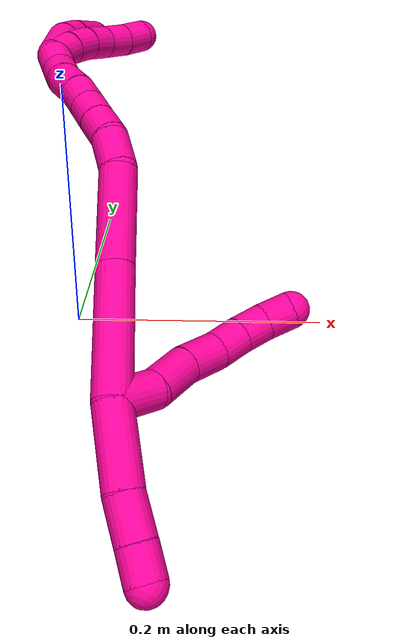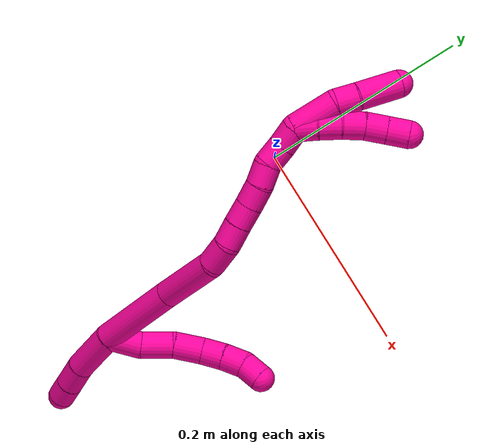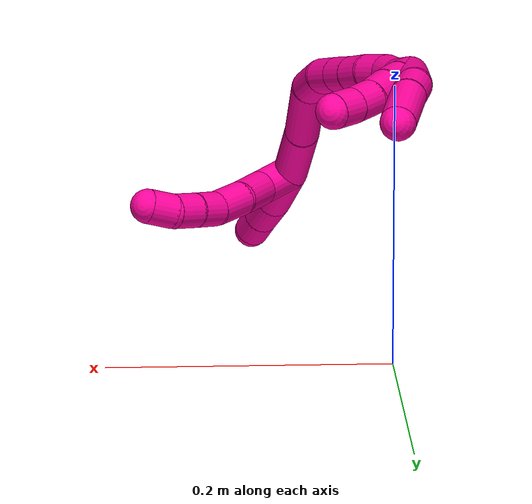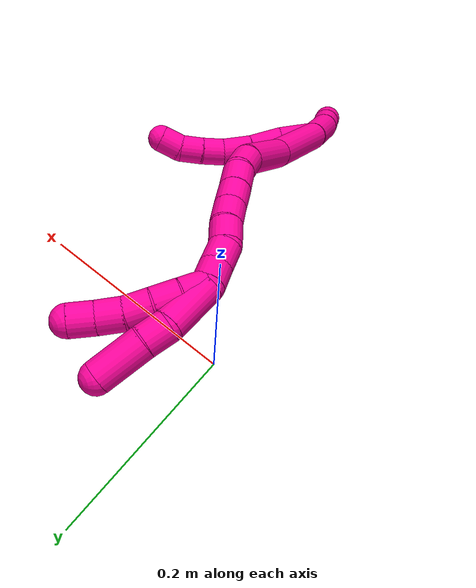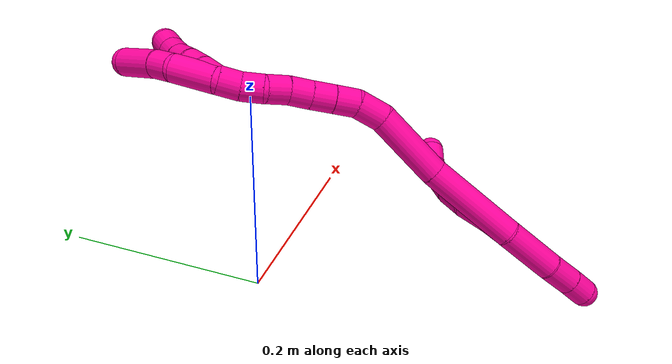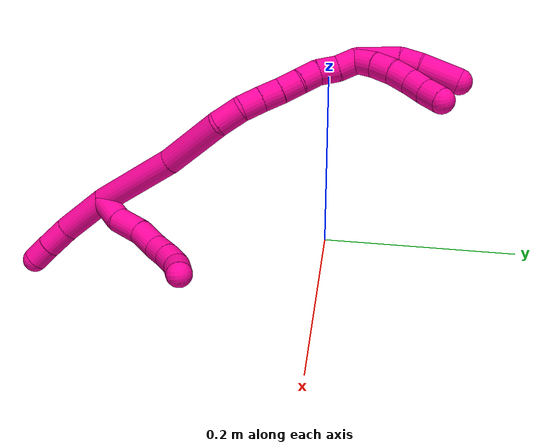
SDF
<sdf version="1.7">
 <world name="default">
  <model name="18">
   <static>0</static>
   <link name="18">
    <collision name="collision-cylinder-e_1_2_8">
     <pose>0.007819 -0.006028 0.01164 0.477806 0.53783 0.134041</pose>
     <geometry><cylinder><radius>0.0125</radius><length>0.030527</length></cylinder></geometry>
     <surface>
      <friction><ode><mu>1.16</mu><mu2>1.16</mu2><slip1>0</slip1><slip2>0</slip2></ode></friction>
      <contact><ode><kp>1e+06</kp><kd>1</kd><max_vel>0</max_vel><min_depth>0.001</min_depth></ode></contact>
     </surface>
    </collision>
    <visual name="visual-cylinder-e_1_2_8">
     <pose>0.007819 -0.006028 0.01164 0.477806 0.53783 0.134041</pose>
     <geometry><cylinder><radius>0.0125</radius><length>0.030527</length></cylinder></geometry>
     <material><ambient>1 0.007843 0.615686 1</ambient></material>
    </visual>
    <collision name="collision-cylinder-e_2_8_9">
     <pose>0.020847 -0.014645 0.037347 0.182055 0.349267 0.032206</pose>
     <geometry><cylinder><radius>0.0125</radius><length>0.030442</length></cylinder></geometry>
     <surface>
      <friction><ode><mu>1.16</mu><mu2>1.16</mu2><slip1>0</slip1><slip2>0</slip2></ode></friction>
      <contact><ode><kp>1e+06</kp><kd>1</kd><max_vel>0</max_vel><min_depth>0.001</min_depth></ode></contact>
     </surface>
    </collision>
    <visual name="visual-cylinder-e_2_8_9">
     <pose>0.020847 -0.014645 0.037347 0.182055 0.349267 0.032206</pose>
     <geometry><cylinder><radius>0.0125</radius><length>0.030442</length></cylinder></geometry>
     <material><ambient>1 0.007843 0.615686 1</ambient></material>
    </visual>
    <collision name="collision-cylinder-e_3_9_10">
     <pose>0.031687 -0.022147 0.062798 0.407317 0.426265 0.089331</pose>
     <geometry><cylinder><radius>0.0125</radius><length>0.027238</length></cylinder></geometry>
     <surface>
      <friction><ode><mu>1.16</mu><mu2>1.16</mu2><slip1>0</slip1><slip2>0</slip2></ode></friction>
      <contact><ode><kp>1e+06</kp><kd>1</kd><max_vel>0</max_vel><min_depth>0.001</min_depth></ode></contact>
     </surface>
    </collision>
    <visual name="visual-cylinder-e_3_9_10">
     <pose>0.031687 -0.022147 0.062798 0.407317 0.426265 0.089331</pose>
     <geometry><cylinder><radius>0.0125</radius><length>0.027238</length></cylinder></geometry>
     <material><ambient>1 0.007843 0.615686 1</ambient></material>
    </visual>
    <collision name="collision-cylinder-e_4_10_11">
     <pose>0.039419 -0.031657 0.083236 0.469979 0.204073 0.049018</pose>
     <geometry><cylinder><radius>0.0125</radius><length>0.020734</length></cylinder></geometry>
     <surface>
      <friction><ode><mu>1.16</mu><mu2>1.16</mu2><slip1>0</slip1><slip2>0</slip2></ode></friction>
      <contact><ode><kp>1e+06</kp><kd>1</kd><max_vel>0</max_vel><min_depth>0.001</min_depth></ode></contact>
     </surface>
    </collision>
    <visual name="visual-cylinder-e_4_10_11">
     <pose>0.039419 -0.031657 0.083236 0.469979 0.204073 0.049018</pose>
     <geometry><cylinder><radius>0.0125</radius><length>0.020734</length></cylinder></geometry>
     <material><ambient>1 0.007843 0.615686 1</ambient></material>
    </visual>
    <collision name="collision-cylinder-e_5_11_12">
     <pose>0.04372 -0.041716 0.100868 0.566829 0.213012 0.062256</pose>
     <geometry><cylinder><radius>0.0125</radius><length>0.020813</length></cylinder></geometry>
     <surface>
      <friction><ode><mu>1.16</mu><mu2>1.16</mu2><slip1>0</slip1><slip2>0</slip2></ode></friction>
      <contact><ode><kp>1e+06</kp><kd>1</kd><max_vel>0</max_vel><min_depth>0.001</min_depth></ode></contact>
     </surface>
    </collision>
    <visual name="visual-cylinder-e_5_11_12">
     <pose>0.04372 -0.041716 0.100868 0.566829 0.213012 0.062256</pose>
     <geometry><cylinder><radius>0.0125</radius><length>0.020813</length></cylinder></geometry>
     <material><ambient>1 0.007843 0.615686 1</ambient></material>
    </visual>
    <collision name="collision-cylinder-e_6_12_6">
     <pose>0.046276 -0.054883 0.116003 0.865898 0.035201 0.016271</pose>
     <geometry><cylinder><radius>0.0125</radius><length>0.020245</length></cylinder></geometry>
     <surface>
      <friction><ode><mu>1.16</mu><mu2>1.16</mu2><slip1>0</slip1><slip2>0</slip2></ode></friction>
      <contact><ode><kp>1e+06</kp><kd>1</kd><max_vel>0</max_vel><min_depth>0.001</min_depth></ode></contact>
     </surface>
    </collision>
    <visual name="visual-cylinder-e_6_12_6">
     <pose>0.046276 -0.054883 0.116003 0.865898 0.035201 0.016271</pose>
     <geometry><cylinder><radius>0.0125</radius><length>0.020245</length></cylinder></geometry>
     <material><ambient>1 0.007843 0.615686 1</ambient></material>
    </visual>
    <collision name="collision-cylinder-e_1_2_13">
     <pose>0.012063 -0.008764 -0.021028 2.74669 0.486966 1.7856</pose>
     <geometry><cylinder><radius>0.0125</radius><length>0.051555</length></cylinder></geometry>
     <surface>
      <friction><ode><mu>1.16</mu><mu2>1.16</mu2><slip1>0</slip1><slip2>0</slip2></ode></friction>
      <contact><ode><kp>1e+06</kp><kd>1</kd><max_vel>0</max_vel><min_depth>0.001</min_depth></ode></contact>
     </surface>
    </collision>
    <visual name="visual-cylinder-e_1_2_13">
     <pose>0.012063 -0.008764 -0.021028 2.74669 0.486966 1.7856</pose>
     <geometry><cylinder><radius>0.0125</radius><length>0.051555</length></cylinder></geometry>
     <material><ambient>1 0.007843 0.615686 1</ambient></material>
    </visual>
    <collision name="collision-cylinder-e_2_13_14">
     <pose>0.031262 -0.023307 -0.052096 2.61937 0.552142 1.62924</pose>
     <geometry><cylinder><radius>0.0125</radius><length>0.027213</length></cylinder></geometry>
     <surface>
      <friction><ode><mu>1.16</mu><mu2>1.16</mu2><slip1>0</slip1><slip2>0</slip2></ode></friction>
      <contact><ode><kp>1e+06</kp><kd>1</kd><max_vel>0</max_vel><min_depth>0.001</min_depth></ode></contact>
     </surface>
    </collision>
    <visual name="visual-cylinder-e_2_13_14">
     <pose>0.031262 -0.023307 -0.052096 2.61937 0.552142 1.62924</pose>
     <geometry><cylinder><radius>0.0125</radius><length>0.027213</length></cylinder></geometry>
     <material><ambient>1 0.007843 0.615686 1</ambient></material>
    </visual>
    <collision name="collision-cylinder-e_3_14_5">
     <pose>0.044208 -0.033373 -0.069919 2.63812 0.579092 1.71726</pose>
     <geometry><cylinder><radius>0.0125</radius><length>0.021232</length></cylinder></geometry>
     <surface>
      <friction><ode><mu>1.16</mu><mu2>1.16</mu2><slip1>0</slip1><slip2>0</slip2></ode></friction>
      <contact><ode><kp>1e+06</kp><kd>1</kd><max_vel>0</max_vel><min_depth>0.001</min_depth></ode></contact>
     </surface>
    </collision>
    <visual name="visual-cylinder-e_3_14_5">
     <pose>0.044208 -0.033373 -0.069919 2.63812 0.579092 1.71726</pose>
     <geometry><cylinder><radius>0.0125</radius><length>0.021232</length></cylinder></geometry>
     <material><ambient>1 0.007843 0.615686 1</ambient></material>
    </visual>
    <collision name="collision-cylinder-e_1_2_15">
     <pose>-0.016124 0.010579 0.038519 -0.268039 -0.383648 0.052358</pose>
     <geometry><cylinder><radius>0.0125</radius><length>0.086154</length></cylinder></geometry>
     <surface>
      <friction><ode><mu>1.16</mu><mu2>1.16</mu2><slip1>0</slip1><slip2>0</slip2></ode></friction>
      <contact><ode><kp>1e+06</kp><kd>1</kd><max_vel>0</max_vel><min_depth>0.001</min_depth></ode></contact>
     </surface>
    </collision>
    <visual name="visual-cylinder-e_1_2_15">
     <pose>-0.016124 0.010579 0.038519 -0.268039 -0.383648 0.052358</pose>
     <geometry><cylinder><radius>0.0125</radius><length>0.086154</length></cylinder></geometry>
     <material><ambient>1 0.007843 0.615686 1</ambient></material>
    </visual>
    <collision name="collision-cylinder-e_2_15_16">
     <pose>-0.048125 0.027078 0.105533 -0.204835 -0.499424 0.052412</pose>
     <geometry><cylinder><radius>0.0125</radius><length>0.066304</length></cylinder></geometry>
     <surface>
      <friction><ode><mu>1.16</mu><mu2>1.16</mu2><slip1>0</slip1><slip2>0</slip2></ode></friction>
      <contact><ode><kp>1e+06</kp><kd>1</kd><max_vel>0</max_vel><min_depth>0.001</min_depth></ode></contact>
     </surface>
    </collision>
    <visual name="visual-cylinder-e_2_15_16">
     <pose>-0.048125 0.027078 0.105533 -0.204835 -0.499424 0.052412</pose>
     <geometry><cylinder><radius>0.0125</radius><length>0.066304</length></cylinder></geometry>
     <material><ambient>1 0.007843 0.615686 1</ambient></material>
    </visual>
    <collision name="collision-cylinder-e_3_16_17">
     <pose>-0.068977 0.039198 0.144506 -0.534254 -0.387839 0.107387</pose>
     <geometry><cylinder><radius>0.0125</radius><length>0.026304</length></cylinder></geometry>
     <surface>
      <friction><ode><mu>1.16</mu><mu2>1.16</mu2><slip1>0</slip1><slip2>0</slip2></ode></friction>
      <contact><ode><kp>1e+06</kp><kd>1</kd><max_vel>0</max_vel><min_depth>0.001</min_depth></ode></contact>
     </surface>
    </collision>
    <visual name="visual-cylinder-e_3_16_17">
     <pose>-0.068977 0.039198 0.144506 -0.534254 -0.387839 0.107387</pose>
     <geometry><cylinder><radius>0.0125</radius><length>0.026304</length></cylinder></geometry>
     <material><ambient>1 0.007843 0.615686 1</ambient></material>
    </visual>
    <collision name="collision-cylinder-e_4_17_18">
     <pose>-0.075887 0.052722 0.162313 -0.785155 -0.184801 0.076702</pose>
     <geometry><cylinder><radius>0.0125</radius><length>0.02108</length></cylinder></geometry>
     <surface>
      <friction><ode><mu>1.16</mu><mu2>1.16</mu2><slip1>0</slip1><slip2>0</slip2></ode></friction>
      <contact><ode><kp>1e+06</kp><kd>1</kd><max_vel>0</max_vel><min_depth>0.001</min_depth></ode></contact>
     </surface>
    </collision>
    <visual name="visual-cylinder-e_4_17_18">
     <pose>-0.075887 0.052722 0.162313 -0.785155 -0.184801 0.076702</pose>
     <geometry><cylinder><radius>0.0125</radius><length>0.02108</length></cylinder></geometry>
     <material><ambient>1 0.007843 0.615686 1</ambient></material>
    </visual>
    <collision name="collision-cylinder-e_5_18_19">
     <pose>-0.079378 0.066867 0.176802 -0.761041 -0.155873 0.062458</pose>
     <geometry><cylinder><radius>0.0125</radius><length>0.020022</length></cylinder></geometry>
     <surface>
      <friction><ode><mu>1.16</mu><mu2>1.16</mu2><slip1>0</slip1><slip2>0</slip2></ode></friction>
      <contact><ode><kp>1e+06</kp><kd>1</kd><max_vel>0</max_vel><min_depth>0.001</min_depth></ode></contact>
     </surface>
    </collision>
    <visual name="visual-cylinder-e_5_18_19">
     <pose>-0.079378 0.066867 0.176802 -0.761041 -0.155873 0.062458</pose>
     <geometry><cylinder><radius>0.0125</radius><length>0.020022</length></cylinder></geometry>
     <material><ambient>1 0.007843 0.615686 1</ambient></material>
    </visual>
    <collision name="collision-cylinder-e_6_19_20">
     <pose>-0.082998 0.080597 0.190946 -0.780155 -0.207216 0.08545</pose>
     <geometry><cylinder><radius>0.0125</radius><length>0.020077</length></cylinder></geometry>
     <surface>
      <friction><ode><mu>1.16</mu><mu2>1.16</mu2><slip1>0</slip1><slip2>0</slip2></ode></friction>
      <contact><ode><kp>1e+06</kp><kd>1</kd><max_vel>0</max_vel><min_depth>0.001</min_depth></ode></contact>
     </surface>
    </collision>
    <visual name="visual-cylinder-e_6_19_20">
     <pose>-0.082998 0.080597 0.190946 -0.780155 -0.207216 0.08545</pose>
     <geometry><cylinder><radius>0.0125</radius><length>0.020077</length></cylinder></geometry>
     <material><ambient>1 0.007843 0.615686 1</ambient></material>
    </visual>
    <collision name="collision-cylinder-e_7_20_21">
     <pose>-0.086663 0.095511 0.20375 -0.941966 -0.160234 0.081721</pose>
     <geometry><cylinder><radius>0.0125</radius><length>0.02005</length></cylinder></geometry>
     <surface>
      <friction><ode><mu>1.16</mu><mu2>1.16</mu2><slip1>0</slip1><slip2>0</slip2></ode></friction>
      <contact><ode><kp>1e+06</kp><kd>1</kd><max_vel>0</max_vel><min_depth>0.001</min_depth></ode></contact>
     </surface>
    </collision>
    <visual name="visual-cylinder-e_7_20_21">
     <pose>-0.086663 0.095511 0.20375 -0.941966 -0.160234 0.081721</pose>
     <geometry><cylinder><radius>0.0125</radius><length>0.02005</length></cylinder></geometry>
     <material><ambient>1 0.007843 0.615686 1</ambient></material>
    </visual>
    <collision name="collision-cylinder-e_8_21_22">
     <pose>-0.087778 0.109707 0.21741 -0.668669 0.048385 -0.016811</pose>
     <geometry><cylinder><radius>0.0125</radius><length>0.020003</length></cylinder></geometry>
     <surface>
      <friction><ode><mu>1.16</mu><mu2>1.16</mu2><slip1>0</slip1><slip2>0</slip2></ode></friction>
      <contact><ode><kp>1e+06</kp><kd>1</kd><max_vel>0</max_vel><min_depth>0.001</min_depth></ode></contact>
     </surface>
    </collision>
    <visual name="visual-cylinder-e_8_21_22">
     <pose>-0.087778 0.109707 0.21741 -0.668669 0.048385 -0.016811</pose>
     <geometry><cylinder><radius>0.0125</radius><length>0.020003</length></cylinder></geometry>
     <material><ambient>1 0.007843 0.615686 1</ambient></material>
    </visual>
    <collision name="collision-cylinder-e_9_22_1">
     <pose>-0.089084 0.121876 0.233067 -0.652529 -0.179901 0.061016</pose>
     <geometry><cylinder><radius>0.0125</radius><length>0.020004</length></cylinder></geometry>
     <surface>
      <friction><ode><mu>1.16</mu><mu2>1.16</mu2><slip1>0</slip1><slip2>0</slip2></ode></friction>
      <contact><ode><kp>1e+06</kp><kd>1</kd><max_vel>0</max_vel><min_depth>0.001</min_depth></ode></contact>
     </surface>
    </collision>
    <visual name="visual-cylinder-e_9_22_1">
     <pose>-0.089084 0.121876 0.233067 -0.652529 -0.179901 0.061016</pose>
     <geometry><cylinder><radius>0.0125</radius><length>0.020004</length></cylinder></geometry>
     <material><ambient>1 0.007843 0.615686 1</ambient></material>
    </visual>
    <collision name="collision-cylinder-e_1_1_23">
     <pose>-0.088395 0.126729 0.250509 0.1161 0.250547 0.014637</pose>
     <geometry><cylinder><radius>0.0125</radius><length>0.02</length></cylinder></geometry>
     <surface>
      <friction><ode><mu>1.16</mu><mu2>1.16</mu2><slip1>0</slip1><slip2>0</slip2></ode></friction>
      <contact><ode><kp>1e+06</kp><kd>1</kd><max_vel>0</max_vel><min_depth>0.001</min_depth></ode></contact>
     </surface>
    </collision>
    <visual name="visual-cylinder-e_1_1_23">
     <pose>-0.088395 0.126729 0.250509 0.1161 0.250547 0.014637</pose>
     <geometry><cylinder><radius>0.0125</radius><length>0.02</length></cylinder></geometry>
     <material><ambient>1 0.007843 0.615686 1</ambient></material>
    </visual>
    <collision name="collision-cylinder-e_2_23_24">
     <pose>-0.082363 0.124238 0.269378 0.146907 0.363192 0.027022</pose>
     <geometry><cylinder><radius>0.0125</radius><length>0.02</length></cylinder></geometry>
     <surface>
      <friction><ode><mu>1.16</mu><mu2>1.16</mu2><slip1>0</slip1><slip2>0</slip2></ode></friction>
      <contact><ode><kp>1e+06</kp><kd>1</kd><max_vel>0</max_vel><min_depth>0.001</min_depth></ode></contact>
     </surface>
    </collision>
    <visual name="visual-cylinder-e_2_23_24">
     <pose>-0.082363 0.124238 0.269378 0.146907 0.363192 0.027022</pose>
     <geometry><cylinder><radius>0.0125</radius><length>0.02</length></cylinder></geometry>
     <material><ambient>1 0.007843 0.615686 1</ambient></material>
    </visual>
    <collision name="collision-cylinder-e_3_24_25">
     <pose>-0.07412 0.12111 0.28728 0.200652 0.488201 0.050134</pose>
     <geometry><cylinder><radius>0.0125</radius><length>0.02</length></cylinder></geometry>
     <surface>
      <friction><ode><mu>1.16</mu><mu2>1.16</mu2><slip1>0</slip1><slip2>0</slip2></ode></friction>
      <contact><ode><kp>1e+06</kp><kd>1</kd><max_vel>0</max_vel><min_depth>0.001</min_depth></ode></contact>
     </surface>
    </collision>
    <visual name="visual-cylinder-e_3_24_25">
     <pose>-0.07412 0.12111 0.28728 0.200652 0.488201 0.050134</pose>
     <geometry><cylinder><radius>0.0125</radius><length>0.02</length></cylinder></geometry>
     <material><ambient>1 0.007843 0.615686 1</ambient></material>
    </visual>
    <collision name="collision-cylinder-e_4_25_26">
     <pose>-0.065225 0.115956 0.304349 0.383376 0.433952 0.085512</pose>
     <geometry><cylinder><radius>0.0125</radius><length>0.02</length></cylinder></geometry>
     <surface>
      <friction><ode><mu>1.16</mu><mu2>1.16</mu2><slip1>0</slip1><slip2>0</slip2></ode></friction>
      <contact><ode><kp>1e+06</kp><kd>1</kd><max_vel>0</max_vel><min_depth>0.001</min_depth></ode></contact>
     </surface>
    </collision>
    <visual name="visual-cylinder-e_4_25_26">
     <pose>-0.065225 0.115956 0.304349 0.383376 0.433952 0.085512</pose>
     <geometry><cylinder><radius>0.0125</radius><length>0.02</length></cylinder></geometry>
     <material><ambient>1 0.007843 0.615686 1</ambient></material>
    </visual>
    <collision name="collision-cylinder-e_5_26_4">
     <pose>-0.05761 0.10893 0.321434 0.396686 0.347986 0.070625</pose>
     <geometry><cylinder><radius>0.0125</radius><length>0.02</length></cylinder></geometry>
     <surface>
      <friction><ode><mu>1.16</mu><mu2>1.16</mu2><slip1>0</slip1><slip2>0</slip2></ode></friction>
      <contact><ode><kp>1e+06</kp><kd>1</kd><max_vel>0</max_vel><min_depth>0.001</min_depth></ode></contact>
     </surface>
    </collision>
    <visual name="visual-cylinder-e_5_26_4">
     <pose>-0.05761 0.10893 0.321434 0.396686 0.347986 0.070625</pose>
     <geometry><cylinder><radius>0.0125</radius><length>0.02</length></cylinder></geometry>
     <material><ambient>1 0.007843 0.615686 1</ambient></material>
    </visual>
    <collision name="collision-cylinder-e_1_1_27">
     <pose>-0.087767 0.134833 0.259881 -0.35226 0.152354 -0.027166</pose>
     <geometry><cylinder><radius>0.0125</radius><length>0.04095</length></cylinder></geometry>
     <surface>
      <friction><ode><mu>1.16</mu><mu2>1.16</mu2><slip1>0</slip1><slip2>0</slip2></ode></friction>
      <contact><ode><kp>1e+06</kp><kd>1</kd><max_vel>0</max_vel><min_depth>0.001</min_depth></ode></contact>
     </surface>
    </collision>
    <visual name="visual-cylinder-e_1_1_27">
     <pose>-0.087767 0.134833 0.259881 -0.35226 0.152354 -0.027166</pose>
     <geometry><cylinder><radius>0.0125</radius><length>0.04095</length></cylinder></geometry>
     <material><ambient>1 0.007843 0.615686 1</ambient></material>
    </visual>
    <collision name="collision-cylinder-e_2_27_28">
     <pose>-0.080751 0.143014 0.288017 -0.130284 0.401003 -0.026514</pose>
     <geometry><cylinder><radius>0.0125</radius><length>0.020026</length></cylinder></geometry>
     <surface>
      <friction><ode><mu>1.16</mu><mu2>1.16</mu2><slip1>0</slip1><slip2>0</slip2></ode></friction>
      <contact><ode><kp>1e+06</kp><kd>1</kd><max_vel>0</max_vel><min_depth>0.001</min_depth></ode></contact>
     </surface>
    </collision>
    <visual name="visual-cylinder-e_2_27_28">
     <pose>-0.080751 0.143014 0.288017 -0.130284 0.401003 -0.026514</pose>
     <geometry><cylinder><radius>0.0125</radius><length>0.020026</length></cylinder></geometry>
     <material><ambient>1 0.007843 0.615686 1</ambient></material>
    </visual>
    <collision name="collision-cylinder-e_3_28_3">
     <pose>-0.067294 0.147323 0.313887 -0.183919 0.511328 -0.0482</pose>
     <geometry><cylinder><radius>0.0125</radius><length>0.039024</length></cylinder></geometry>
     <surface>
      <friction><ode><mu>1.16</mu><mu2>1.16</mu2><slip1>0</slip1><slip2>0</slip2></ode></friction>
      <contact><ode><kp>1e+06</kp><kd>1</kd><max_vel>0</max_vel><min_depth>0.001</min_depth></ode></contact>
     </surface>
    </collision>
    <visual name="visual-cylinder-e_3_28_3">
     <pose>-0.067294 0.147323 0.313887 -0.183919 0.511328 -0.0482</pose>
     <geometry><cylinder><radius>0.0125</radius><length>0.039024</length></cylinder></geometry>
     <material><ambient>1 0.007843 0.615686 1</ambient></material>
    </visual>
    <collision name="collision-sphere-3">
     <pose>-0.057746 0.150435 0.330616 0 -0 0</pose>
     <geometry><sphere><radius>0.0125</radius></sphere></geometry>
     <surface>
      <friction><ode><mu>1.16</mu><mu2>1.16</mu2><slip1>0</slip1><slip2>0</slip2></ode></friction>
      <contact><ode><kp>1e+06</kp><kd>1</kd><max_vel>0</max_vel><min_depth>0.001</min_depth></ode></contact>
     </surface>
    </collision>
    <visual name="visual-sphere-3">
     <pose>-0.057746 0.150435 0.330616 0 -0 0</pose>
     <geometry><sphere><radius>0.0125</radius></sphere></geometry>
     <material><ambient>1 0.007843 0.615686 1</ambient></material>
    </visual>
    <collision name="collision-sphere-28">
     <pose>-0.076842 0.144211 0.297158 0 -0 0</pose>
     <geometry><sphere><radius>0.0125</radius></sphere></geometry>
     <surface>
      <friction><ode><mu>1.16</mu><mu2>1.16</mu2><slip1>0</slip1><slip2>0</slip2></ode></friction>
      <contact><ode><kp>1e+06</kp><kd>1</kd><max_vel>0</max_vel><min_depth>0.001</min_depth></ode></contact>
     </surface>
    </collision>
    <visual name="visual-sphere-28">
     <pose>-0.076842 0.144211 0.297158 0 -0 0</pose>
     <geometry><sphere><radius>0.0125</radius></sphere></geometry>
     <material><ambient>1 0.007843 0.615686 1</ambient></material>
    </visual>
    <collision name="collision-sphere-27">
     <pose>-0.084659 0.141816 0.278877 0 -0 0</pose>
     <geometry><sphere><radius>0.0125</radius></sphere></geometry>
     <surface>
      <friction><ode><mu>1.16</mu><mu2>1.16</mu2><slip1>0</slip1><slip2>0</slip2></ode></friction>
      <contact><ode><kp>1e+06</kp><kd>1</kd><max_vel>0</max_vel><min_depth>0.001</min_depth></ode></contact>
     </surface>
    </collision>
    <visual name="visual-sphere-27">
     <pose>-0.084659 0.141816 0.278877 0 -0 0</pose>
     <geometry><sphere><radius>0.0125</radius></sphere></geometry>
     <material><ambient>1 0.007843 0.615686 1</ambient></material>
    </visual>
    <collision name="collision-sphere-4">
     <pose>-0.0542 0.105298 0.330105 0 -0 0</pose>
     <geometry><sphere><radius>0.0125</radius></sphere></geometry>
     <surface>
      <friction><ode><mu>1.16</mu><mu2>1.16</mu2><slip1>0</slip1><slip2>0</slip2></ode></friction>
      <contact><ode><kp>1e+06</kp><kd>1</kd><max_vel>0</max_vel><min_depth>0.001</min_depth></ode></contact>
     </surface>
    </collision>
    <visual name="visual-sphere-4">
     <pose>-0.0542 0.105298 0.330105 0 -0 0</pose>
     <geometry><sphere><radius>0.0125</radius></sphere></geometry>
     <material><ambient>1 0.007843 0.615686 1</ambient></material>
    </visual>
    <collision name="collision-sphere-26">
     <pose>-0.06102 0.112562 0.312763 0 -0 0</pose>
     <geometry><sphere><radius>0.0125</radius></sphere></geometry>
     <surface>
      <friction><ode><mu>1.16</mu><mu2>1.16</mu2><slip1>0</slip1><slip2>0</slip2></ode></friction>
      <contact><ode><kp>1e+06</kp><kd>1</kd><max_vel>0</max_vel><min_depth>0.001</min_depth></ode></contact>
     </surface>
    </collision>
    <visual name="visual-sphere-26">
     <pose>-0.06102 0.112562 0.312763 0 -0 0</pose>
     <geometry><sphere><radius>0.0125</radius></sphere></geometry>
     <material><ambient>1 0.007843 0.615686 1</ambient></material>
    </visual>
    <collision name="collision-sphere-25">
     <pose>-0.069429 0.119349 0.295935 0 -0 0</pose>
     <geometry><sphere><radius>0.0125</radius></sphere></geometry>
     <surface>
      <friction><ode><mu>1.16</mu><mu2>1.16</mu2><slip1>0</slip1><slip2>0</slip2></ode></friction>
      <contact><ode><kp>1e+06</kp><kd>1</kd><max_vel>0</max_vel><min_depth>0.001</min_depth></ode></contact>
     </surface>
    </collision>
    <visual name="visual-sphere-25">
     <pose>-0.069429 0.119349 0.295935 0 -0 0</pose>
     <geometry><sphere><radius>0.0125</radius></sphere></geometry>
     <material><ambient>1 0.007843 0.615686 1</ambient></material>
    </visual>
    <collision name="collision-sphere-24">
     <pose>-0.07881 0.12287 0.278625 0 -0 0</pose>
     <geometry><sphere><radius>0.0125</radius></sphere></geometry>
     <surface>
      <friction><ode><mu>1.16</mu><mu2>1.16</mu2><slip1>0</slip1><slip2>0</slip2></ode></friction>
      <contact><ode><kp>1e+06</kp><kd>1</kd><max_vel>0</max_vel><min_depth>0.001</min_depth></ode></contact>
     </surface>
    </collision>
    <visual name="visual-sphere-24">
     <pose>-0.07881 0.12287 0.278625 0 -0 0</pose>
     <geometry><sphere><radius>0.0125</radius></sphere></geometry>
     <material><ambient>1 0.007843 0.615686 1</ambient></material>
    </visual>
    <collision name="collision-sphere-23">
     <pose>-0.085915 0.125607 0.260131 0 -0 0</pose>
     <geometry><sphere><radius>0.0125</radius></sphere></geometry>
     <surface>
      <friction><ode><mu>1.16</mu><mu2>1.16</mu2><slip1>0</slip1><slip2>0</slip2></ode></friction>
      <contact><ode><kp>1e+06</kp><kd>1</kd><max_vel>0</max_vel><min_depth>0.001</min_depth></ode></contact>
     </surface>
    </collision>
    <visual name="visual-sphere-23">
     <pose>-0.085915 0.125607 0.260131 0 -0 0</pose>
     <geometry><sphere><radius>0.0125</radius></sphere></geometry>
     <material><ambient>1 0.007843 0.615686 1</ambient></material>
    </visual>
    <collision name="collision-sphere-1">
     <pose>-0.090874 0.127851 0.240886 0 -0 0</pose>
     <geometry><sphere><radius>0.0125</radius></sphere></geometry>
     <surface>
      <friction><ode><mu>1.16</mu><mu2>1.16</mu2><slip1>0</slip1><slip2>0</slip2></ode></friction>
      <contact><ode><kp>1e+06</kp><kd>1</kd><max_vel>0</max_vel><min_depth>0.001</min_depth></ode></contact>
     </surface>
    </collision>
    <visual name="visual-sphere-1">
     <pose>-0.090874 0.127851 0.240886 0 -0 0</pose>
     <geometry><sphere><radius>0.0125</radius></sphere></geometry>
     <material><ambient>1 0.007843 0.615686 1</ambient></material>
    </visual>
    <collision name="collision-sphere-22">
     <pose>-0.087295 0.1159 0.225248 0 -0 0</pose>
     <geometry><sphere><radius>0.0125</radius></sphere></geometry>
     <surface>
      <friction><ode><mu>1.16</mu><mu2>1.16</mu2><slip1>0</slip1><slip2>0</slip2></ode></friction>
      <contact><ode><kp>1e+06</kp><kd>1</kd><max_vel>0</max_vel><min_depth>0.001</min_depth></ode></contact>
     </surface>
    </collision>
    <visual name="visual-sphere-22">
     <pose>-0.087295 0.1159 0.225248 0 -0 0</pose>
     <geometry><sphere><radius>0.0125</radius></sphere></geometry>
     <material><ambient>1 0.007843 0.615686 1</ambient></material>
    </visual>
    <collision name="collision-sphere-21">
     <pose>-0.088262 0.103514 0.209571 0 -0 0</pose>
     <geometry><sphere><radius>0.0125</radius></sphere></geometry>
     <surface>
      <friction><ode><mu>1.16</mu><mu2>1.16</mu2><slip1>0</slip1><slip2>0</slip2></ode></friction>
      <contact><ode><kp>1e+06</kp><kd>1</kd><max_vel>0</max_vel><min_depth>0.001</min_depth></ode></contact>
     </surface>
    </collision>
    <visual name="visual-sphere-21">
     <pose>-0.088262 0.103514 0.209571 0 -0 0</pose>
     <geometry><sphere><radius>0.0125</radius></sphere></geometry>
     <material><ambient>1 0.007843 0.615686 1</ambient></material>
    </visual>
    <collision name="collision-sphere-12">
     <pose>0.04592 -0.047177 0.109448 0 -0 0</pose>
     <geometry><sphere><radius>0.0125</radius></sphere></geometry>
     <surface>
      <friction><ode><mu>1.16</mu><mu2>1.16</mu2><slip1>0</slip1><slip2>0</slip2></ode></friction>
      <contact><ode><kp>1e+06</kp><kd>1</kd><max_vel>0</max_vel><min_depth>0.001</min_depth></ode></contact>
     </surface>
    </collision>
    <visual name="visual-sphere-12">
     <pose>0.04592 -0.047177 0.109448 0 -0 0</pose>
     <geometry><sphere><radius>0.0125</radius></sphere></geometry>
     <material><ambient>1 0.007843 0.615686 1</ambient></material>
    </visual>
    <collision name="collision-sphere-11">
     <pose>0.04152 -0.036254 0.092287 0 -0 0</pose>
     <geometry><sphere><radius>0.0125</radius></sphere></geometry>
     <surface>
      <friction><ode><mu>1.16</mu><mu2>1.16</mu2><slip1>0</slip1><slip2>0</slip2></ode></friction>
      <contact><ode><kp>1e+06</kp><kd>1</kd><max_vel>0</max_vel><min_depth>0.001</min_depth></ode></contact>
     </surface>
    </collision>
    <visual name="visual-sphere-11">
     <pose>0.04152 -0.036254 0.092287 0 -0 0</pose>
     <geometry><sphere><radius>0.0125</radius></sphere></geometry>
     <material><ambient>1 0.007843 0.615686 1</ambient></material>
    </visual>
    <collision name="collision-sphere-10">
     <pose>0.037318 -0.027059 0.074184 0 -0 0</pose>
     <geometry><sphere><radius>0.0125</radius></sphere></geometry>
     <surface>
      <friction><ode><mu>1.16</mu><mu2>1.16</mu2><slip1>0</slip1><slip2>0</slip2></ode></friction>
      <contact><ode><kp>1e+06</kp><kd>1</kd><max_vel>0</max_vel><min_depth>0.001</min_depth></ode></contact>
     </surface>
    </collision>
    <visual name="visual-sphere-10">
     <pose>0.037318 -0.027059 0.074184 0 -0 0</pose>
     <geometry><sphere><radius>0.0125</radius></sphere></geometry>
     <material><ambient>1 0.007843 0.615686 1</ambient></material>
    </visual>
    <collision name="collision-sphere-9">
     <pose>0.026056 -0.017234 0.051412 0 -0 0</pose>
     <geometry><sphere><radius>0.0125</radius></sphere></geometry>
     <surface>
      <friction><ode><mu>1.16</mu><mu2>1.16</mu2><slip1>0</slip1><slip2>0</slip2></ode></friction>
      <contact><ode><kp>1e+06</kp><kd>1</kd><max_vel>0</max_vel><min_depth>0.001</min_depth></ode></contact>
     </surface>
    </collision>
    <visual name="visual-sphere-9">
     <pose>0.026056 -0.017234 0.051412 0 -0 0</pose>
     <geometry><sphere><radius>0.0125</radius></sphere></geometry>
     <material><ambient>1 0.007843 0.615686 1</ambient></material>
    </visual>
    <collision name="collision-sphere-2">
     <geometry><sphere><radius>0.0125</radius></sphere></geometry>
     <surface>
      <friction><ode><mu>1.16</mu><mu2>1.16</mu2><slip1>0</slip1><slip2>0</slip2></ode></friction>
      <contact><ode><kp>1e+06</kp><kd>1</kd><max_vel>0</max_vel><min_depth>0.001</min_depth></ode></contact>
     </surface>
    </collision>
    <visual name="visual-sphere-2">
     <geometry><sphere><radius>0.0125</radius></sphere></geometry>
     <material><ambient>1 0.007843 0.615686 1</ambient></material>
    </visual>
    <collision name="collision-sphere-19">
     <pose>-0.080932 0.073687 0.183963 0 -0 0</pose>
     <geometry><sphere><radius>0.0125</radius></sphere></geometry>
     <surface>
      <friction><ode><mu>1.16</mu><mu2>1.16</mu2><slip1>0</slip1><slip2>0</slip2></ode></friction>
      <contact><ode><kp>1e+06</kp><kd>1</kd><max_vel>0</max_vel><min_depth>0.001</min_depth></ode></contact>
     </surface>
    </collision>
    <visual name="visual-sphere-19">
     <pose>-0.080932 0.073687 0.183963 0 -0 0</pose>
     <geometry><sphere><radius>0.0125</radius></sphere></geometry>
     <material><ambient>1 0.007843 0.615686 1</ambient></material>
    </visual>
    <collision name="collision-sphere-8">
     <pose>0.015638 -0.012055 0.023281 0 -0 0</pose>
     <geometry><sphere><radius>0.0125</radius></sphere></geometry>
     <surface>
      <friction><ode><mu>1.16</mu><mu2>1.16</mu2><slip1>0</slip1><slip2>0</slip2></ode></friction>
      <contact><ode><kp>1e+06</kp><kd>1</kd><max_vel>0</max_vel><min_depth>0.001</min_depth></ode></contact>
     </surface>
    </collision>
    <visual name="visual-sphere-8">
     <pose>0.015638 -0.012055 0.023281 0 -0 0</pose>
     <geometry><sphere><radius>0.0125</radius></sphere></geometry>
     <material><ambient>1 0.007843 0.615686 1</ambient></material>
    </visual>
    <collision name="collision-sphere-6">
     <pose>0.046633 -0.062588 0.122558 0 -0 0</pose>
     <geometry><sphere><radius>0.0125</radius></sphere></geometry>
     <surface>
      <friction><ode><mu>1.16</mu><mu2>1.16</mu2><slip1>0</slip1><slip2>0</slip2></ode></friction>
      <contact><ode><kp>1e+06</kp><kd>1</kd><max_vel>0</max_vel><min_depth>0.001</min_depth></ode></contact>
     </surface>
    </collision>
    <visual name="visual-sphere-6">
     <pose>0.046633 -0.062588 0.122558 0 -0 0</pose>
     <geometry><sphere><radius>0.0125</radius></sphere></geometry>
     <material><ambient>1 0.007843 0.615686 1</ambient></material>
    </visual>
    <collision name="collision-sphere-13">
     <pose>0.024125 -0.017529 -0.042056 0 -0 0</pose>
     <geometry><sphere><radius>0.0125</radius></sphere></geometry>
     <surface>
      <friction><ode><mu>1.16</mu><mu2>1.16</mu2><slip1>0</slip1><slip2>0</slip2></ode></friction>
      <contact><ode><kp>1e+06</kp><kd>1</kd><max_vel>0</max_vel><min_depth>0.001</min_depth></ode></contact>
     </surface>
    </collision>
    <visual name="visual-sphere-13">
     <pose>0.024125 -0.017529 -0.042056 0 -0 0</pose>
     <geometry><sphere><radius>0.0125</radius></sphere></geometry>
     <material><ambient>1 0.007843 0.615686 1</ambient></material>
    </visual>
    <collision name="collision-sphere-14">
     <pose>0.038399 -0.029086 -0.062137 0 -0 0</pose>
     <geometry><sphere><radius>0.0125</radius></sphere></geometry>
     <surface>
      <friction><ode><mu>1.16</mu><mu2>1.16</mu2><slip1>0</slip1><slip2>0</slip2></ode></friction>
      <contact><ode><kp>1e+06</kp><kd>1</kd><max_vel>0</max_vel><min_depth>0.001</min_depth></ode></contact>
     </surface>
    </collision>
    <visual name="visual-sphere-14">
     <pose>0.038399 -0.029086 -0.062137 0 -0 0</pose>
     <geometry><sphere><radius>0.0125</radius></sphere></geometry>
     <material><ambient>1 0.007843 0.615686 1</ambient></material>
    </visual>
    <collision name="collision-sphere-5">
     <pose>0.050018 -0.037659 -0.077702 0 -0 0</pose>
     <geometry><sphere><radius>0.0125</radius></sphere></geometry>
     <surface>
      <friction><ode><mu>1.16</mu><mu2>1.16</mu2><slip1>0</slip1><slip2>0</slip2></ode></friction>
      <contact><ode><kp>1e+06</kp><kd>1</kd><max_vel>0</max_vel><min_depth>0.001</min_depth></ode></contact>
     </surface>
    </collision>
    <visual name="visual-sphere-5">
     <pose>0.050018 -0.037659 -0.077702 0 -0 0</pose>
     <geometry><sphere><radius>0.0125</radius></sphere></geometry>
     <material><ambient>1 0.007843 0.615686 1</ambient></material>
    </visual>
    <collision name="collision-sphere-15">
     <pose>-0.032248 0.021159 0.077039 0 -0 0</pose>
     <geometry><sphere><radius>0.0125</radius></sphere></geometry>
     <surface>
      <friction><ode><mu>1.16</mu><mu2>1.16</mu2><slip1>0</slip1><slip2>0</slip2></ode></friction>
      <contact><ode><kp>1e+06</kp><kd>1</kd><max_vel>0</max_vel><min_depth>0.001</min_depth></ode></contact>
     </surface>
    </collision>
    <visual name="visual-sphere-15">
     <pose>-0.032248 0.021159 0.077039 0 -0 0</pose>
     <geometry><sphere><radius>0.0125</radius></sphere></geometry>
     <material><ambient>1 0.007843 0.615686 1</ambient></material>
    </visual>
    <collision name="collision-sphere-16">
     <pose>-0.064003 0.032998 0.134028 0 -0 0</pose>
     <geometry><sphere><radius>0.0125</radius></sphere></geometry>
     <surface>
      <friction><ode><mu>1.16</mu><mu2>1.16</mu2><slip1>0</slip1><slip2>0</slip2></ode></friction>
      <contact><ode><kp>1e+06</kp><kd>1</kd><max_vel>0</max_vel><min_depth>0.001</min_depth></ode></contact>
     </surface>
    </collision>
    <visual name="visual-sphere-16">
     <pose>-0.064003 0.032998 0.134028 0 -0 0</pose>
     <geometry><sphere><radius>0.0125</radius></sphere></geometry>
     <material><ambient>1 0.007843 0.615686 1</ambient></material>
    </visual>
    <collision name="collision-sphere-17">
     <pose>-0.073951 0.045397 0.154985 0 -0 0</pose>
     <geometry><sphere><radius>0.0125</radius></sphere></geometry>
     <surface>
      <friction><ode><mu>1.16</mu><mu2>1.16</mu2><slip1>0</slip1><slip2>0</slip2></ode></friction>
      <contact><ode><kp>1e+06</kp><kd>1</kd><max_vel>0</max_vel><min_depth>0.001</min_depth></ode></contact>
     </surface>
    </collision>
    <visual name="visual-sphere-17">
     <pose>-0.073951 0.045397 0.154985 0 -0 0</pose>
     <geometry><sphere><radius>0.0125</radius></sphere></geometry>
     <material><ambient>1 0.007843 0.615686 1</ambient></material>
    </visual>
    <collision name="collision-sphere-18">
     <pose>-0.077824 0.060046 0.169641 0 -0 0</pose>
     <geometry><sphere><radius>0.0125</radius></sphere></geometry>
     <surface>
      <friction><ode><mu>1.16</mu><mu2>1.16</mu2><slip1>0</slip1><slip2>0</slip2></ode></friction>
      <contact><ode><kp>1e+06</kp><kd>1</kd><max_vel>0</max_vel><min_depth>0.001</min_depth></ode></contact>
     </surface>
    </collision>
    <visual name="visual-sphere-18">
     <pose>-0.077824 0.060046 0.169641 0 -0 0</pose>
     <geometry><sphere><radius>0.0125</radius></sphere></geometry>
     <material><ambient>1 0.007843 0.615686 1</ambient></material>
    </visual>
    <collision name="collision-sphere-20">
     <pose>-0.085063 0.087507 0.197929 0 -0 0</pose>
     <geometry><sphere><radius>0.0125</radius></sphere></geometry>
     <surface>
      <friction><ode><mu>1.16</mu><mu2>1.16</mu2><slip1>0</slip1><slip2>0</slip2></ode></friction>
      <contact><ode><kp>1e+06</kp><kd>1</kd><max_vel>0</max_vel><min_depth>0.001</min_depth></ode></contact>
     </surface>
    </collision>
    <visual name="visual-sphere-20">
     <pose>-0.085063 0.087507 0.197929 0 -0 0</pose>
     <geometry><sphere><radius>0.0125</radius></sphere></geometry>
     <material><ambient>1 0.007843 0.615686 1</ambient></material>
    </visual>
    <inertial>
     <pose>-0.033207 0.046352 0.134289 0 -0 0</pose>
     <mass>0.75</mass>
     <inertia>
      <ixx>0.000145</ixx>
      <ixy>0</ixy>
      <ixz>0</ixz>
      <iyy>0.000154</iyy>
      <iyz>0</iyz>
      <izz>3.6e-05</izz>
     </inertia>
    </inertial>
   </link>
   <pose>0.059277 -0.217604 0.077487 -0.503401 1.21337 0.714711</pose>
  </model>
 </world>
</sdf>
